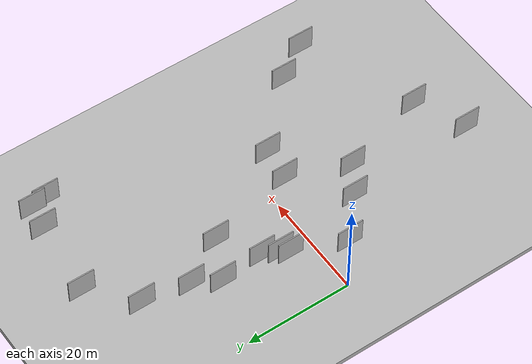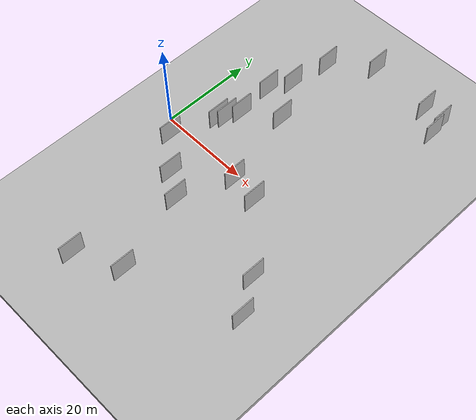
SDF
<?xml version="1.0" encoding="utf-8"?>

<sdf version="1.6">

   <world name="default">

      <gui fullscreen="0">

         <camera name="user_camera">

            <pose>-15 0 4.57585 0 0 0</pose>

            <view_controller>orbit</view_controller>

         </camera>

      </gui>

      <scene>

         <sky>

           <clouds>

             <speed>12</speed>

           </clouds>

         </sky>

         <ambient>0.4 0.4 0.4 1</ambient>

         <background>0.7 0.7 0.7 1</background>

         <shadows>1</shadows>

      </scene>

      <gravity>0 0 -9.8066</gravity>

      <magnetic_field>6e-06 2.3e-05 -4.2e-05</magnetic_field>

      <physics default="0" name="default_physics" type="ode">

         <ode>

            <solver>

               <type>quick</type>

               <iters>10</iters>

               <sor>1.0</sor>

               <use_dynamic_moi_rescaling>0</use_dynamic_moi_rescaling>

            </solver>

            <constraints>

               <cfm>0</cfm>

               <erp>0.2</erp>

               <contact_max_correcting_vel>100</contact_max_correcting_vel>

               <contact_surface_layer>0.001</contact_surface_layer>

            </constraints>

         </ode>

         <max_step_size>0.004</max_step_size>

         <real_time_factor>1</real_time_factor>

         <real_time_update_rate>250</real_time_update_rate>

      </physics>

      <light name="sun" type="directional">

         <cast_shadows>1</cast_shadows>

         <pose>0 0 10 0 0 0</pose>

         <diffuse>0.8 0.8 0.8 1</diffuse>

         <specular>0.2 0.2 0.2 1</specular>

         <attenuation>

            <range>1000</range>

            <constant>0.9</constant>

            <linear>0.01</linear>

            <quadratic>0.001</quadratic>

         </attenuation>

         <direction>-0.5 0.1 -0.9</direction>

      </light>

      <include>

         <name>ground_plane_1</name>

         <uri>model://HANNAS_ground_plane</uri>

         <pose>0 0 0  0 0 0</pose>

      </include>

      <include>

         <name>ground_plane_2</name>

         <uri>model://HANNAS_ground_plane</uri>

         <pose>100 0 0  0 0 0</pose>

      </include>

      <model name="HANNAS_wall_1">

         <static>1</static>

         <pose frame="">8.8276 5.4213 2.5 0.000000 0.000000 1.570796</pose>

         <link name="link">

            <pose frame="">0 0 2.50 0 0 0</pose>

            <collision name="collision">

               <geometry>

                  <box>

                     <size>5.00 0.2 5.00</size>

                  </box>

               </geometry>

               <max_contacts>10</max_contacts>

               <surface>

                  <contact>

                     <ode/>

                  </contact>

                  <bounce/>

                  <friction>

                     <torsional>

                        <ode/>

                     </torsional>

                     <ode/>

                  </friction>

               </surface>

            </collision>

            <visual name="visual">

               <cast_shadows>0</cast_shadows>

               <geometry>

                  <box>

                     <size>5.00 0.2 5.00</size>

                  </box>

               </geometry>

               <material>

                  <script>

                     <uri>model://HANNAS_wall/materials/scripts</uri>

                     <uri>model://HANNAS_wall/materials/textures</uri>

                     <name>vrc/HANNAS_wall</name>

                  </script>

               </material>

            </visual>

            <self_collide>0</self_collide>

            <enable_wind>0</enable_wind>

            <kinematic>0</kinematic>

         </link>

      </model>

      <model name="HANNAS_wall_2">

         <static>1</static>

         <pose frame="">17.8921 14.2613 2.5 0.000000 0.000000 1.570796</pose>

         <link name="link">

            <pose frame="">0 0 2.50 0 0 0</pose>

            <collision name="collision">

               <geometry>

                  <box>

                     <size>5.00 0.2 5.00</size>

                  </box>

               </geometry>

               <max_contacts>10</max_contacts>

               <surface>

                  <contact>

                     <ode/>

                  </contact>

                  <bounce/>

                  <friction>

                     <torsional>

                        <ode/>

                     </torsional>

                     <ode/>

                  </friction>

               </surface>

            </collision>

            <visual name="visual">

               <cast_shadows>0</cast_shadows>

               <geometry>

                  <box>

                     <size>5.00 0.2 5.00</size>

                  </box>

               </geometry>

               <material>

                  <script>

                     <uri>model://HANNAS_wall/materials/scripts</uri>

                     <uri>model://HANNAS_wall/materials/textures</uri>

                     <name>vrc/HANNAS_wall</name>

                  </script>

               </material>

            </visual>

            <self_collide>0</self_collide>

            <enable_wind>0</enable_wind>

            <kinematic>0</kinematic>

         </link>

      </model>

      <model name="HANNAS_wall_3">

         <static>1</static>

         <pose frame="">17.5821 -13.7339 2.5 0.000000 0.000000 1.570796</pose>

         <link name="link">

            <pose frame="">0 0 2.50 0 0 0</pose>

            <collision name="collision">

               <geometry>

                  <box>

                     <size>5.00 0.2 5.00</size>

                  </box>

               </geometry>

               <max_contacts>10</max_contacts>

               <surface>

                  <contact>

                     <ode/>

                  </contact>

                  <bounce/>

                  <friction>

                     <torsional>

                        <ode/>

                     </torsional>

                     <ode/>

                  </friction>

               </surface>

            </collision>

            <visual name="visual">

               <cast_shadows>0</cast_shadows>

               <geometry>

                  <box>

                     <size>5.00 0.2 5.00</size>

                  </box>

               </geometry>

               <material>

                  <script>

                     <uri>model://HANNAS_wall/materials/scripts</uri>

                     <uri>model://HANNAS_wall/materials/textures</uri>

                     <name>vrc/HANNAS_wall</name>

                  </script>

               </material>

            </visual>

            <self_collide>0</self_collide>

            <enable_wind>0</enable_wind>

            <kinematic>0</kinematic>

         </link>

      </model>

      <model name="HANNAS_wall_4">

         <static>1</static>

         <pose frame="">12.2227 -10.2573 2.5 0.000000 0.000000 1.570796</pose>

         <link name="link">

            <pose frame="">0 0 2.50 0 0 0</pose>

            <collision name="collision">

               <geometry>

                  <box>

                     <size>5.00 0.2 5.00</size>

                  </box>

               </geometry>

               <max_contacts>10</max_contacts>

               <surface>

                  <contact>

                     <ode/>

                  </contact>

                  <bounce/>

                  <friction>

                     <torsional>

                        <ode/>

                     </torsional>

                     <ode/>

                  </friction>

               </surface>

            </collision>

            <visual name="visual">

               <cast_shadows>0</cast_shadows>

               <geometry>

                  <box>

                     <size>5.00 0.2 5.00</size>

                  </box>

               </geometry>

               <material>

                  <script>

                     <uri>model://HANNAS_wall/materials/scripts</uri>

                     <uri>model://HANNAS_wall/materials/textures</uri>

                     <name>vrc/HANNAS_wall</name>

                  </script>

               </material>

            </visual>

            <self_collide>0</self_collide>

            <enable_wind>0</enable_wind>

            <kinematic>0</kinematic>

         </link>

      </model>

      <model name="HANNAS_wall_5">

         <static>1</static>

         <pose frame="">21.9663 -2.6379 2.5 0.000000 0.000000 1.570796</pose>

         <link name="link">

            <pose frame="">0 0 2.50 0 0 0</pose>

            <collision name="collision">

               <geometry>

                  <box>

                     <size>5.00 0.2 5.00</size>

                  </box>

               </geometry>

               <max_contacts>10</max_contacts>

               <surface>

                  <contact>

                     <ode/>

                  </contact>

                  <bounce/>

                  <friction>

                     <torsional>

                        <ode/>

                     </torsional>

                     <ode/>

                  </friction>

               </surface>

            </collision>

            <visual name="visual">

               <cast_shadows>0</cast_shadows>

               <geometry>

                  <box>

                     <size>5.00 0.2 5.00</size>

                  </box>

               </geometry>

               <material>

                  <script>

                     <uri>model://HANNAS_wall/materials/scripts</uri>

                     <uri>model://HANNAS_wall/materials/textures</uri>

                     <name>vrc/HANNAS_wall</name>

                  </script>

               </material>

            </visual>

            <self_collide>0</self_collide>

            <enable_wind>0</enable_wind>

            <kinematic>0</kinematic>

         </link>

      </model>

      <model name="HANNAS_wall_6">

         <static>1</static>

         <pose frame="">14.3818 31.2126 2.5 0.000000 0.000000 1.570796</pose>

         <link name="link">

            <pose frame="">0 0 2.50 0 0 0</pose>

            <collision name="collision">

               <geometry>

                  <box>

                     <size>5.00 0.2 5.00</size>

                  </box>

               </geometry>

               <max_contacts>10</max_contacts>

               <surface>

                  <contact>

                     <ode/>

                  </contact>

                  <bounce/>

                  <friction>

                     <torsional>

                        <ode/>

                     </torsional>

                     <ode/>

                  </friction>

               </surface>

            </collision>

            <visual name="visual">

               <cast_shadows>0</cast_shadows>

               <geometry>

                  <box>

                     <size>5.00 0.2 5.00</size>

                  </box>

               </geometry>

               <material>

                  <script>

                     <uri>model://HANNAS_wall/materials/scripts</uri>

                     <uri>model://HANNAS_wall/materials/textures</uri>

                     <name>vrc/HANNAS_wall</name>

                  </script>

               </material>

            </visual>

            <self_collide>0</self_collide>

            <enable_wind>0</enable_wind>

            <kinematic>0</kinematic>

         </link>

      </model>

      <model name="HANNAS_wall_7">

         <static>1</static>

         <pose frame="">5.1675 -4.0686 2.5 0.000000 0.000000 1.570796</pose>

         <link name="link">

            <pose frame="">0 0 2.50 0 0 0</pose>

            <collision name="collision">

               <geometry>

                  <box>

                     <size>5.00 0.2 5.00</size>

                  </box>

               </geometry>

               <max_contacts>10</max_contacts>

               <surface>

                  <contact>

                     <ode/>

                  </contact>

                  <bounce/>

                  <friction>

                     <torsional>

                        <ode/>

                     </torsional>

                     <ode/>

                  </friction>

               </surface>

            </collision>

            <visual name="visual">

               <cast_shadows>0</cast_shadows>

               <geometry>

                  <box>

                     <size>5.00 0.2 5.00</size>

                  </box>

               </geometry>

               <material>

                  <script>

                     <uri>model://HANNAS_wall/materials/scripts</uri>

                     <uri>model://HANNAS_wall/materials/textures</uri>

                     <name>vrc/HANNAS_wall</name>

                  </script>

               </material>

            </visual>

            <self_collide>0</self_collide>

            <enable_wind>0</enable_wind>

            <kinematic>0</kinematic>

         </link>

      </model>

      <model name="HANNAS_wall_8">

         <static>1</static>

         <pose frame="">41.5049 32.8986 2.5 0.000000 0.000000 1.570796</pose>

         <link name="link">

            <pose frame="">0 0 2.50 0 0 0</pose>

            <collision name="collision">

               <geometry>

                  <box>

                     <size>5.00 0.2 5.00</size>

                  </box>

               </geometry>

               <max_contacts>10</max_contacts>

               <surface>

                  <contact>

                     <ode/>

                  </contact>

                  <bounce/>

                  <friction>

                     <torsional>

                        <ode/>

                     </torsional>

                     <ode/>

                  </friction>

               </surface>

            </collision>

            <visual name="visual">

               <cast_shadows>0</cast_shadows>

               <geometry>

                  <box>

                     <size>5.00 0.2 5.00</size>

                  </box>

               </geometry>

               <material>

                  <script>

                     <uri>model://HANNAS_wall/materials/scripts</uri>

                     <uri>model://HANNAS_wall/materials/textures</uri>

                     <name>vrc/HANNAS_wall</name>

                  </script>

               </material>

            </visual>

            <self_collide>0</self_collide>

            <enable_wind>0</enable_wind>

            <kinematic>0</kinematic>

         </link>

      </model>

      <model name="HANNAS_wall_9">

         <static>1</static>

         <pose frame="">9.8714 6.7481 2.5 0.000000 0.000000 1.570796</pose>

         <link name="link">

            <pose frame="">0 0 2.50 0 0 0</pose>

            <collision name="collision">

               <geometry>

                  <box>

                     <size>5.00 0.2 5.00</size>

                  </box>

               </geometry>

               <max_contacts>10</max_contacts>

               <surface>

                  <contact>

                     <ode/>

                  </contact>

                  <bounce/>

                  <friction>

                     <torsional>

                        <ode/>

                     </torsional>

                     <ode/>

                  </friction>

               </surface>

            </collision>

            <visual name="visual">

               <cast_shadows>0</cast_shadows>

               <geometry>

                  <box>

                     <size>5.00 0.2 5.00</size>

                  </box>

               </geometry>

               <material>

                  <script>

                     <uri>model://HANNAS_wall/materials/scripts</uri>

                     <uri>model://HANNAS_wall/materials/textures</uri>

                     <name>vrc/HANNAS_wall</name>

                  </script>

               </material>

            </visual>

            <self_collide>0</self_collide>

            <enable_wind>0</enable_wind>

            <kinematic>0</kinematic>

         </link>

      </model>

      <model name="HANNAS_wall_10">

         <static>1</static>

         <pose frame="">22.2172 37.8734 2.5 0.000000 0.000000 1.570796</pose>

         <link name="link">

            <pose frame="">0 0 2.50 0 0 0</pose>

            <collision name="collision">

               <geometry>

                  <box>

                     <size>5.00 0.2 5.00</size>

                  </box>

               </geometry>

               <max_contacts>10</max_contacts>

               <surface>

                  <contact>

                     <ode/>

                  </contact>

                  <bounce/>

                  <friction>

                     <torsional>

                        <ode/>

                     </torsional>

                     <ode/>

                  </friction>

               </surface>

            </collision>

            <visual name="visual">

               <cast_shadows>0</cast_shadows>

               <geometry>

                  <box>

                     <size>5.00 0.2 5.00</size>

                  </box>

               </geometry>

               <material>

                  <script>

                     <uri>model://HANNAS_wall/materials/scripts</uri>

                     <uri>model://HANNAS_wall/materials/textures</uri>

                     <name>vrc/HANNAS_wall</name>

                  </script>

               </material>

            </visual>

            <self_collide>0</self_collide>

            <enable_wind>0</enable_wind>

            <kinematic>0</kinematic>

         </link>

      </model>

      <model name="HANNAS_wall_11">

         <static>1</static>

         <pose frame="">36.4158 36.4774 2.5 0.000000 0.000000 1.570796</pose>

         <link name="link">

            <pose frame="">0 0 2.50 0 0 0</pose>

            <collision name="collision">

               <geometry>

                  <box>

                     <size>5.00 0.2 5.00</size>

                  </box>

               </geometry>

               <max_contacts>10</max_contacts>

               <surface>

                  <contact>

                     <ode/>

                  </contact>

                  <bounce/>

                  <friction>

                     <torsional>

                        <ode/>

                     </torsional>

                     <ode/>

                  </friction>

               </surface>

            </collision>

            <visual name="visual">

               <cast_shadows>0</cast_shadows>

               <geometry>

                  <box>

                     <size>5.00 0.2 5.00</size>

                  </box>

               </geometry>

               <material>

                  <script>

                     <uri>model://HANNAS_wall/materials/scripts</uri>

                     <uri>model://HANNAS_wall/materials/textures</uri>

                     <name>vrc/HANNAS_wall</name>

                  </script>

               </material>

            </visual>

            <self_collide>0</self_collide>

            <enable_wind>0</enable_wind>

            <kinematic>0</kinematic>

         </link>

      </model>

      <model name="HANNAS_wall_12">

         <static>1</static>

         <pose frame="">13.1904 -34.9031 2.5 0.000000 0.000000 1.570796</pose>

         <link name="link">

            <pose frame="">0 0 2.50 0 0 0</pose>

            <collision name="collision">

               <geometry>

                  <box>

                     <size>5.00 0.2 5.00</size>

                  </box>

               </geometry>

               <max_contacts>10</max_contacts>

               <surface>

                  <contact>

                     <ode/>

                  </contact>

                  <bounce/>

                  <friction>

                     <torsional>

                        <ode/>

                     </torsional>

                     <ode/>

                  </friction>

               </surface>

            </collision>

            <visual name="visual">

               <cast_shadows>0</cast_shadows>

               <geometry>

                  <box>

                     <size>5.00 0.2 5.00</size>

                  </box>

               </geometry>

               <material>

                  <script>

                     <uri>model://HANNAS_wall/materials/scripts</uri>

                     <uri>model://HANNAS_wall/materials/textures</uri>

                     <name>vrc/HANNAS_wall</name>

                  </script>

               </material>

            </visual>

            <self_collide>0</self_collide>

            <enable_wind>0</enable_wind>

            <kinematic>0</kinematic>

         </link>

      </model>

      <model name="HANNAS_wall_13">

         <static>1</static>

         <pose frame="">12.8567 22.5137 2.5 0.000000 0.000000 1.570796</pose>

         <link name="link">

            <pose frame="">0 0 2.50 0 0 0</pose>

            <collision name="collision">

               <geometry>

                  <box>

                     <size>5.00 0.2 5.00</size>

                  </box>

               </geometry>

               <max_contacts>10</max_contacts>

               <surface>

                  <contact>

                     <ode/>

                  </contact>

                  <bounce/>

                  <friction>

                     <torsional>

                        <ode/>

                     </torsional>

                     <ode/>

                  </friction>

               </surface>

            </collision>

            <visual name="visual">

               <cast_shadows>0</cast_shadows>

               <geometry>

                  <box>

                     <size>5.00 0.2 5.00</size>

                  </box>

               </geometry>

               <material>

                  <script>

                     <uri>model://HANNAS_wall/materials/scripts</uri>

                     <uri>model://HANNAS_wall/materials/textures</uri>

                     <name>vrc/HANNAS_wall</name>

                  </script>

               </material>

            </visual>

            <self_collide>0</self_collide>

            <enable_wind>0</enable_wind>

            <kinematic>0</kinematic>

         </link>

      </model>

      <model name="HANNAS_wall_14">

         <static>1</static>

         <pose frame="">44.4878 -22.0236 2.5 0.000000 0.000000 1.570796</pose>

         <link name="link">

            <pose frame="">0 0 2.50 0 0 0</pose>

            <collision name="collision">

               <geometry>

                  <box>

                     <size>5.00 0.2 5.00</size>

                  </box>

               </geometry>

               <max_contacts>10</max_contacts>

               <surface>

                  <contact>

                     <ode/>

                  </contact>

                  <bounce/>

                  <friction>

                     <torsional>

                        <ode/>

                     </torsional>

                     <ode/>

                  </friction>

               </surface>

            </collision>

            <visual name="visual">

               <cast_shadows>0</cast_shadows>

               <geometry>

                  <box>

                     <size>5.00 0.2 5.00</size>

                  </box>

               </geometry>

               <material>

                  <script>

                     <uri>model://HANNAS_wall/materials/scripts</uri>

                     <uri>model://HANNAS_wall/materials/textures</uri>

                     <name>vrc/HANNAS_wall</name>

                  </script>

               </material>

            </visual>

            <self_collide>0</self_collide>

            <enable_wind>0</enable_wind>

            <kinematic>0</kinematic>

         </link>

      </model>

      <model name="HANNAS_wall_15">

         <static>1</static>

         <pose frame="">41.0470 35.7467 2.5 0.000000 0.000000 1.570796</pose>

         <link name="link">

            <pose frame="">0 0 2.50 0 0 0</pose>

            <collision name="collision">

               <geometry>

                  <box>

                     <size>5.00 0.2 5.00</size>

                  </box>

               </geometry>

               <max_contacts>10</max_contacts>

               <surface>

                  <contact>

                     <ode/>

                  </contact>

                  <bounce/>

                  <friction>

                     <torsional>

                        <ode/>

                     </torsional>

                     <ode/>

                  </friction>

               </surface>

            </collision>

            <visual name="visual">

               <cast_shadows>0</cast_shadows>

               <geometry>

                  <box>

                     <size>5.00 0.2 5.00</size>

                  </box>

               </geometry>

               <material>

                  <script>

                     <uri>model://HANNAS_wall/materials/scripts</uri>

                     <uri>model://HANNAS_wall/materials/textures</uri>

                     <name>vrc/HANNAS_wall</name>

                  </script>

               </material>

            </visual>

            <self_collide>0</self_collide>

            <enable_wind>0</enable_wind>

            <kinematic>0</kinematic>

         </link>

      </model>

      <model name="HANNAS_wall_16">

         <static>1</static>

         <pose frame="">11.0481 9.6721 2.5 0.000000 0.000000 1.570796</pose>

         <link name="link">

            <pose frame="">0 0 2.50 0 0 0</pose>

            <collision name="collision">

               <geometry>

                  <box>

                     <size>5.00 0.2 5.00</size>

                  </box>

               </geometry>

               <max_contacts>10</max_contacts>

               <surface>

                  <contact>

                     <ode/>

                  </contact>

                  <bounce/>

                  <friction>

                     <torsional>

                        <ode/>

                     </torsional>

                     <ode/>

                  </friction>

               </surface>

            </collision>

            <visual name="visual">

               <cast_shadows>0</cast_shadows>

               <geometry>

                  <box>

                     <size>5.00 0.2 5.00</size>

                  </box>

               </geometry>

               <material>

                  <script>

                     <uri>model://HANNAS_wall/materials/scripts</uri>

                     <uri>model://HANNAS_wall/materials/textures</uri>

                     <name>vrc/HANNAS_wall</name>

                  </script>

               </material>

            </visual>

            <self_collide>0</self_collide>

            <enable_wind>0</enable_wind>

            <kinematic>0</kinematic>

         </link>

      </model>

      <model name="HANNAS_wall_17">

         <static>1</static>

         <pose frame="">40.0906 -15.2949 2.5 0.000000 0.000000 1.570796</pose>

         <link name="link">

            <pose frame="">0 0 2.50 0 0 0</pose>

            <collision name="collision">

               <geometry>

                  <box>

                     <size>5.00 0.2 5.00</size>

                  </box>

               </geometry>

               <max_contacts>10</max_contacts>

               <surface>

                  <contact>

                     <ode/>

                  </contact>

                  <bounce/>

                  <friction>

                     <torsional>

                        <ode/>

                     </torsional>

                     <ode/>

                  </friction>

               </surface>

            </collision>

            <visual name="visual">

               <cast_shadows>0</cast_shadows>

               <geometry>

                  <box>

                     <size>5.00 0.2 5.00</size>

                  </box>

               </geometry>

               <material>

                  <script>

                     <uri>model://HANNAS_wall/materials/scripts</uri>

                     <uri>model://HANNAS_wall/materials/textures</uri>

                     <name>vrc/HANNAS_wall</name>

                  </script>

               </material>

            </visual>

            <self_collide>0</self_collide>

            <enable_wind>0</enable_wind>

            <kinematic>0</kinematic>

         </link>

      </model>

      <model name="HANNAS_wall_18">

         <static>1</static>

         <pose frame="">10.3954 17.9312 2.5 0.000000 0.000000 1.570796</pose>

         <link name="link">

            <pose frame="">0 0 2.50 0 0 0</pose>

            <collision name="collision">

               <geometry>

                  <box>

                     <size>5.00 0.2 5.00</size>

                  </box>

               </geometry>

               <max_contacts>10</max_contacts>

               <surface>

                  <contact>

                     <ode/>

                  </contact>

                  <bounce/>

                  <friction>

                     <torsional>

                        <ode/>

                     </torsional>

                     <ode/>

                  </friction>

               </surface>

            </collision>

            <visual name="visual">

               <cast_shadows>0</cast_shadows>

               <geometry>

                  <box>

                     <size>5.00 0.2 5.00</size>

                  </box>

               </geometry>

               <material>

                  <script>

                     <uri>model://HANNAS_wall/materials/scripts</uri>

                     <uri>model://HANNAS_wall/materials/textures</uri>

                     <name>vrc/HANNAS_wall</name>

                  </script>

               </material>

            </visual>

            <self_collide>0</self_collide>

            <enable_wind>0</enable_wind>

            <kinematic>0</kinematic>

         </link>

      </model>

      <model name="HANNAS_wall_19">

         <static>1</static>

         <pose frame="">28.2029 -3.4985 2.5 0.000000 0.000000 1.570796</pose>

         <link name="link">

            <pose frame="">0 0 2.50 0 0 0</pose>

            <collision name="collision">

               <geometry>

                  <box>

                     <size>5.00 0.2 5.00</size>

                  </box>

               </geometry>

               <max_contacts>10</max_contacts>

               <surface>

                  <contact>

                     <ode/>

                  </contact>

                  <bounce/>

                  <friction>

                     <torsional>

                        <ode/>

                     </torsional>

                     <ode/>

                  </friction>

               </surface>

            </collision>

            <visual name="visual">

               <cast_shadows>0</cast_shadows>

               <geometry>

                  <box>

                     <size>5.00 0.2 5.00</size>

                  </box>

               </geometry>

               <material>

                  <script>

                     <uri>model://HANNAS_wall/materials/scripts</uri>

                     <uri>model://HANNAS_wall/materials/textures</uri>

                     <name>vrc/HANNAS_wall</name>

                  </script>

               </material>

            </visual>

            <self_collide>0</self_collide>

            <enable_wind>0</enable_wind>

            <kinematic>0</kinematic>

         </link>

      </model>

      <model name="HANNAS_wall_20">

         <static>1</static>

         <pose frame="">22.5145 -30.5351 2.5 0.000000 0.000000 1.570796</pose>

         <link name="link">

            <pose frame="">0 0 2.50 0 0 0</pose>

            <collision name="collision">

               <geometry>

                  <box>

                     <size>5.00 0.2 5.00</size>

                  </box>

               </geometry>

               <max_contacts>10</max_contacts>

               <surface>

                  <contact>

                     <ode/>

                  </contact>

                  <bounce/>

                  <friction>

                     <torsional>

                        <ode/>

                     </torsional>

                     <ode/>

                  </friction>

               </surface>

            </collision>

            <visual name="visual">

               <cast_shadows>0</cast_shadows>

               <geometry>

                  <box>

                     <size>5.00 0.2 5.00</size>

                  </box>

               </geometry>

               <material>

                  <script>

                     <uri>model://HANNAS_wall/materials/scripts</uri>

                     <uri>model://HANNAS_wall/materials/textures</uri>

                     <name>vrc/HANNAS_wall</name>

                  </script>

               </material>

            </visual>

            <self_collide>0</self_collide>

            <enable_wind>0</enable_wind>

            <kinematic>0</kinematic>

         </link>

      </model>

   </world>

</sdf>

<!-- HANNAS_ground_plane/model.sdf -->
<sdf version="1.4">
<model name="HANNAS_ground_plane">
  <static>true</static>
    <link name="link">
      <collision name="collision">
        <geometry>
          <plane>
            <normal>0 0 1</normal>
            <size>1000 1000</size>
          </plane>
        </geometry>
        <surface>
          <friction>
            <ode>
              <mu>100</mu>
              <mu2>50</mu2>
            </ode>
          </friction>
        </surface>
      </collision>
      <visual name="visual">
        <cast_shadows>false</cast_shadows>
        <geometry>
          <plane>
            <normal>0 0 1</normal>
            <size>1000 1000</size>
          </plane>
        </geometry>
        <material>
          <script>
            <uri>model://HANNAS_ground_plane/materials/scripts/HANNAS_ground_plane.material</uri>
	    <uri>model://HANNAS_ground_plane/materials/textures</uri>
            <name>HANNASGroundPlane/Image</name>
          </script>
        </material>
      </visual>
    </link>
  </model>
</sdf>
